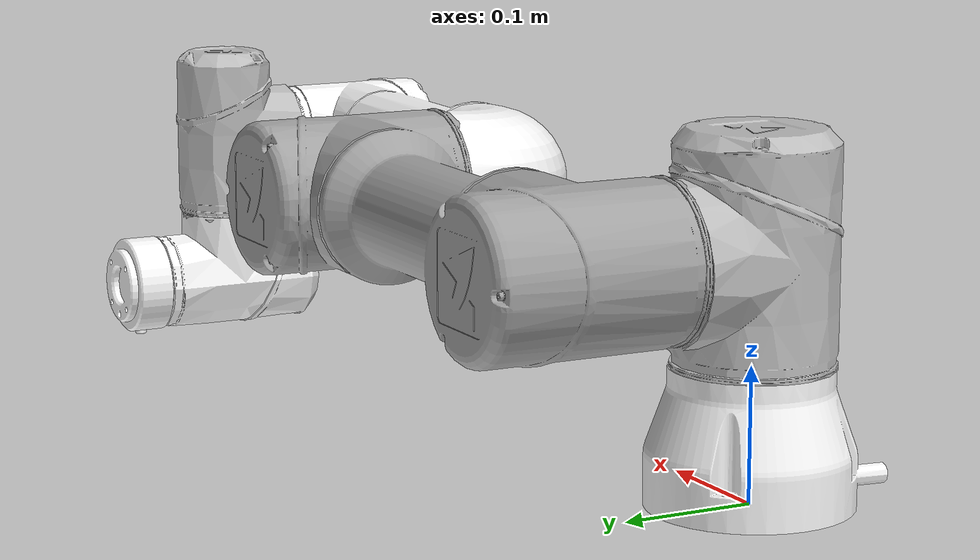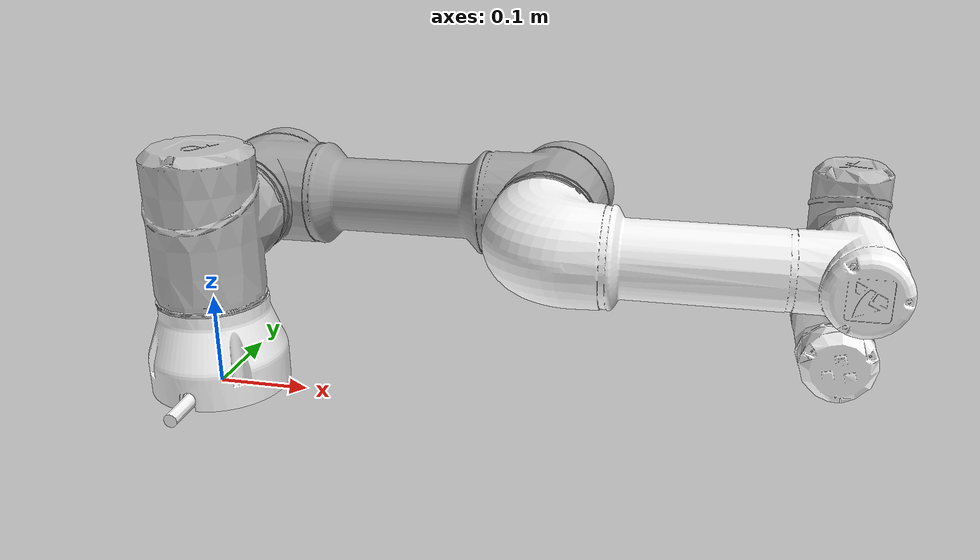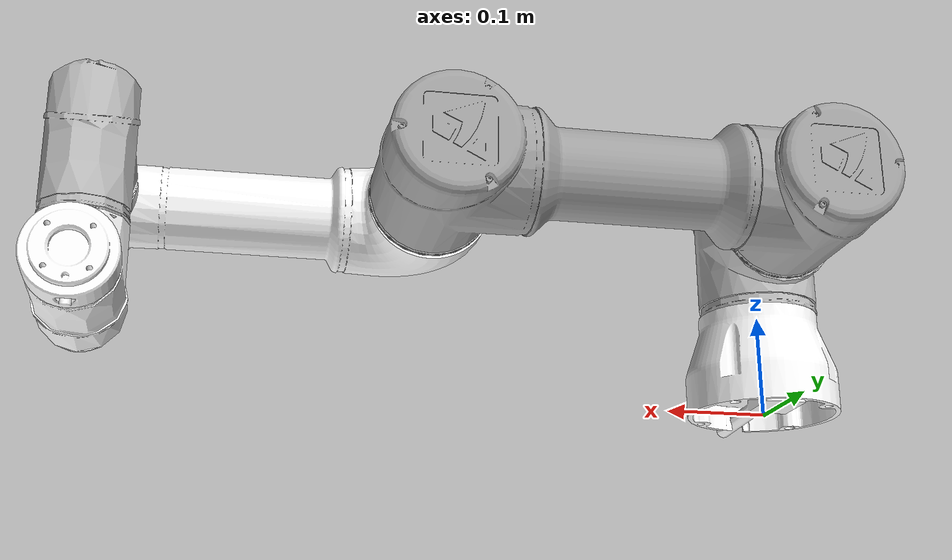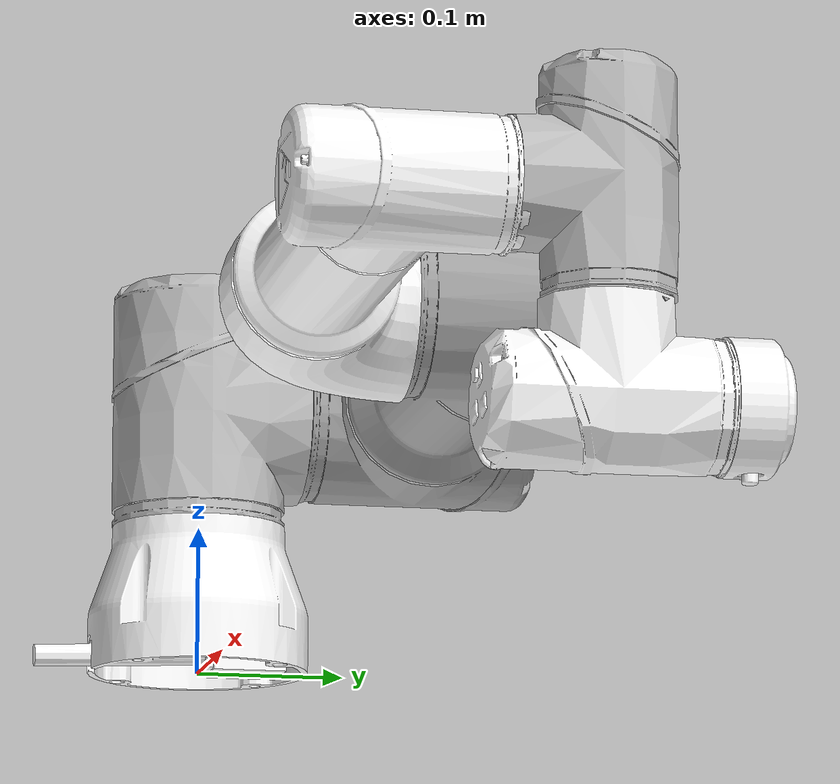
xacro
<?xml version="1.0"?>
<robot xmlns:xacro="http://www.ros.org/wiki/xacro" name="c7a_description">

    <!-- Used for fixing robot to Gazebo 'base_link' -->
    <link name="world"/>
    <joint name="fixed" type="fixed">
        <parent link="world"/>
        <child link="base_link"/>
    </joint>

    <!-- Import c7a_description urdf file -->
    <xacro:include filename="$(find gbt_description)/urdf/GBT_C7A_gazebo.urdf" />

    <!-- Set Gazebo properties for certain links -->
    <gazebo reference="base_link">
        <self_collide>false</self_collide>
        <gravity>false</gravity>
    </gazebo>
    <gazebo reference="link1">
        <self_collide>false</self_collide>
        <gravity>false</gravity>
    </gazebo>
    <gazebo reference="link2">
        <gravity>false</gravity>
    </gazebo>
    <gazebo reference="link3">
        <gravity>false</gravity>
    </gazebo>
    <gazebo reference="link4">
        <gravity>false</gravity>
    </gazebo>
    <gazebo reference="link5">
        <gravity>false</gravity>
    </gazebo>
    <gazebo reference="link6">
        <gravity>false</gravity>
    </gazebo>

    <gazebo>
        <is_static>true</is_static>
        <self_collide>true</self_collide>
    </gazebo>

    <!-- ros2_control -->
    <ros2_control name="GazeboSystem" type="system">
        <hardware>
            <plugin>gazebo_ros2_control/GazeboSystem</plugin>
        </hardware>
        <joint name="joint1">
            <command_interface name="position"/>
            <state_interface name="position">
                <param name="initial_value">0</param>
            </state_interface>
            <state_interface name="velocity"/>
        </joint>
        <joint name="joint2">
            <command_interface name="position"/>
            <state_interface name="position">
                <param name="initial_value">0</param>
            </state_interface>
            <state_interface name="velocity"/>
        </joint>
        <joint name="joint3">
            <command_interface name="position"/>
            <state_interface name="position">
                <param name="initial_value">0</param>
            </state_interface>
            <state_interface name="velocity"/>
        </joint>
        <joint name="joint4">
            <command_interface name="position"/>
            <state_interface name="position">
                <param name="initial_value">0</param>
            </state_interface>
            <state_interface name="velocity"/>
        </joint>
        <joint name="joint5">
            <command_interface name="position"/>
            <state_interface name="position">
                <param name="initial_value">0</param>
            </state_interface>
            <state_interface name="velocity"/>
        </joint>
        <joint name="joint6">
            <command_interface name="position"/>
            <state_interface name="position">
                <param name="initial_value">0</param>
            </state_interface>
            <state_interface name="velocity"/>
        </joint>
    </ros2_control>

    <!-- load ros2_control plugin -->
    <!-- If you don’t need to use MoveIt, comment it out -->
    <gazebo>
        <plugin filename="libgazebo_ros2_control.so" name="gazebo_ros2_control">
            <parameters>$(find c7a_moveit_config)/config/ros2_controllers.yaml</parameters>
            <robot_param>robot_description</robot_param>
            <robot_param_node>robot_state_publisher</robot_param_node>
        </plugin>
    </gazebo>

</robot>

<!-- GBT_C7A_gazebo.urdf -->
<robot
  name="GBT-C7A">
  <link
    name="base_link">
    <inertial>
      <origin
        xyz="-5.26704954492915E-06 -0.0098126576895962 0.0491108287185979"
        rpy="0 0 0" />
      <mass
        value="9.16040326523465" />
      <inertia
        ixx="0.0419458054611511"
        ixy="1.03351238796275E-05"
        ixz="-1.16385212137257E-06"
        iyy="0.0160795355795088"
        iyz="-0.00415210835016869"
        izz="0.0465550656362786" />
    </inertial>
    <visual>
      <origin
        xyz="0 0 0"
        rpy="1.5707963268 0 0" />
      <geometry>
        <mesh
          filename="file://$(find gbt_description)/meshes/visual/c7a/c7a_base.dae" />
      </geometry>
      <material
        name="">
        <color
          rgba="1 1 1 1" />
      </material>
    </visual>
    <collision>
      <origin
        xyz="0 0 0"
        rpy="1.5707963268 0 0" />
      <geometry>
        <mesh
          filename="file://$(find gbt_description)/meshes/collision/c7a/c7a_base.STL" />
      </geometry>
    </collision>
  </link>
  <link
    name="link1">
    <inertial>
      <origin
        xyz="-2.2231E-07 0.0039863 0.082573"
        rpy="0 0 0" />
      <mass
        value="15.175" />
      <inertia
        ixx="0.047239"
        ixy="-1.1092E-08"
        ixz="6.1658E-07"
        iyy="0.045942"
        iyz="-0.00010066"
        izz="0.029088" />
    </inertial>
    <visual>
      <origin
        xyz="0 0 0"
        rpy="0 0 0" />
      <geometry>
        <mesh
          filename="file://$(find gbt_description)/meshes/visual/c7a/c7a_1.dae" />
      </geometry>
      <material
        name="">
        <color
          rgba="0.75294 0.75294 0.75294 1" />
      </material>
    </visual>
    <collision>
      <origin
        xyz="0 0 0"
        rpy="0 0 0" />
      <geometry>
        <mesh
          filename="file://$(find gbt_description)/meshes/collision/c7a/c7a_1.STL" />
      </geometry>
    </collision>
  </link>
  <joint
    name="joint1"
    type="revolute">
    <origin
      xyz="0 0 0.094"
      rpy="0 0 0" />
    <parent
      link="base_link" />
    <child
      link="link1" />
    <axis
      xyz="0 0 1" />
    <limit
      lower="-6.283185307179"
      upper="6.283185307179"
      effort="100"
      velocity="1" />
  </joint>
  <link
    name="link2">
    <inertial>
      <origin
        xyz="0.175 -2.4749E-07 0.082978"
        rpy="0 0 0" />
      <mass
        value="42.406" />
      <inertia
        ixx="0.10612"
        ixy="2.7254E-06"
        ixz="1.9039E-06"
        iyy="1.0509"
        iyz="8.5915E-07"
        izz="1.0146" />
    </inertial>
    <visual>
      <origin
        xyz="0 0 0"
        rpy="0 1.5707963268 -1.5707963268" />
      <geometry>
        <mesh
          filename="file://$(find gbt_description)/meshes/visual/c7a/c7a_2.dae" />
      </geometry>
      <material
        name="">
        <color
          rgba="0.64706 0.64706 0.64706 1" />
      </material>
    </visual>
    <collision>
      <origin
        xyz="0 0 0"
        rpy="0 1.5707963268 -1.5707963268" />
      <geometry>
        <mesh
          filename="file://$(find gbt_description)/meshes/collision/c7a/c7a_2.STL" />
      </geometry>
    </collision>
  </link>
  <joint
    name="joint2"
    type="revolute">
    <origin
      xyz="0 0.063 0.084"
      rpy="-1.5708 0 0" />
    <parent
      link="link1" />
    <child
      link="link2" />
    <axis
      xyz="0 0 -1" />
    <limit
      lower="-1.483529864195"
      upper="4.625122517784"
      effort="100"
      velocity="1" />
  </joint>
  <link
    name="link3">
    <inertial>
      <origin
        xyz="-0.14241 6.1389E-07 0.056555"
        rpy="0 0 0" />
      <mass
        value="22.494" />
      <inertia
        ixx="0.03219"
        ixy="-6.2382E-08"
        ixz="0.014535"
        iyy="0.36351"
        iyz="6.3874E-08"
        izz="0.35645" />
    </inertial>
    <visual>
      <origin
        xyz="0 0 0"
        rpy="3.1415926535 0 -1.5707963268" />
      <geometry>
        <mesh
          filename="file://$(find gbt_description)/meshes/visual/c7a/c7a_3.dae" />
      </geometry>
      <material
        name="">
        <color
          rgba="1 1 1 1" />
      </material>
    </visual>
    <collision>
      <origin
        xyz="0 0 0"
        rpy="3.1415926535 0 -1.5707963268" />
      <geometry>
        <mesh
          filename="file://$(find gbt_description)/meshes/collision/c7a/c7a_3.STL" />
      </geometry>
    </collision>
  </link>
  <joint
    name="joint3"
    type="revolute">
    <origin
      xyz="0.35 0 0"
      rpy="-3.1416 0 3.1416" />
    <parent
      link="link2" />
    <child
      link="link3" />
    <axis
      xyz="0 0 1" />
    <limit
      lower="-2.809980095710"
      upper="2.809980095710"
      effort="100"
      velocity="1" />
  </joint>
  <link
    name="link4">
    <inertial>
      <origin
        xyz="1.2977E-07 0.0036933 0.046819"
        rpy="0 0 0" />
      <mass
        value="5.9624" />
      <inertia
        ixx="0.01117"
        ixy="8.492E-08"
        ixz="1.0592E-08"
        iyy="0.0057359"
        iyz="-0.00011927"
        izz="0.010395" />
    </inertial>
    <visual>
      <origin
        xyz="0 0 0"
        rpy="1.5707963268 0 0" />
      <geometry>
        <mesh
          filename="file://$(find gbt_description)/meshes/visual/c7a/c7a_4.dae" />
      </geometry>
      <material
        name="">
        <color
          rgba="0.75294 0.75294 0.75294 1" />
      </material>
    </visual>
    <collision>
      <origin
        xyz="0 0 0"
        rpy="1.5707963268 0 0" />
      <geometry>
        <mesh
          filename="file://$(find gbt_description)/meshes/collision/c7a/c7a_4.STL"   />
      </geometry>
    </collision>
  </link>
  <joint
    name="joint4"
    type="revolute">
    <origin
      xyz="-0.3117 0 -0.0083"
      rpy="3.1416 0 3.1416" />
    <parent
      link="link3" />
    <child
      link="link4" />
    <axis
      xyz="0 0 -1" />
    <limit
      lower="-1.483529864195"
      upper="4.625122517784"
      effort="100"
      velocity="1" />
  </joint>
  <link
    name="link5">
    <inertial>
      <origin
        xyz="1.3304E-07 -0.00083634 -0.04715"
        rpy="0 0 0" />
      <mass
        value="6.3691" />
      <inertia
        ixx="0.013244"
        ixy="1.0431E-07"
        ixz="3.2379E-08"
        iyy="0.0060649"
        iyz="-1.9476E-05"
        izz="0.012458" />
    </inertial>
    <visual>
      <origin
        xyz="0 0 0"
        rpy="0 0 0" />
      <geometry>
        <mesh
          filename="file://$(find gbt_description)/meshes/visual/c7a/c7a_5.dae" />
      </geometry>
      <material
        name="">
        <color
          rgba="1 1 1 1" />
      </material>
    </visual>
    <collision>
      <origin
        xyz="0 0 0"
        rpy="0 0 0" />
      <geometry>
        <mesh
          filename="file://$(find gbt_description)/meshes/collision/c7a/c7a_5.STL" />
      </geometry>
    </collision>
  </link>
  <joint
    name="joint5"
    type="revolute">
    <origin
      xyz="0 0.0713 0.052"
      rpy="1.5708 0 0" />
    <parent
      link="link4" />
    <child
      link="link5" />
    <axis
      xyz="0 0 -1" />
    <limit
      lower="-6.283185307179"
      upper="6.283185307179"
      effort="100"
      velocity="1" />
  </joint>
  <link
    name="link6">
    <inertial>
      <origin
        xyz="3.8813E-08 0.00017432 0.012497"
        rpy="0 0 0" />
      <mass
        value="1.0139" />
      <inertia
        ixx="0.00046196"
        ixy="1.8319E-11"
        ixz="-3.9805E-12"
        iyy="0.00046763"
        iyz="-6.4994E-08"
        izz="0.00080288" />
    </inertial>
    <visual>
      <origin
        xyz="0 0 0"
        rpy="0 1.5707963268 0" />
      <geometry>
        <mesh
          filename="file://$(find gbt_description)/meshes/visual/c7a/c7a_6.dae" />
      </geometry>
      <material
        name="">
        <color
          rgba="1 1 1 1" />
      </material>
    </visual>
    <collision>
      <origin
        xyz="0 0 0"
        rpy="0 1.5707963268 0" />
      <geometry>
        <mesh
          filename="file://$(find gbt_description)/meshes/collision/c7a/c7a_6.STL" />
      </geometry>
    </collision>
  </link>
  <joint
    name="joint6"
    type="revolute">
    <origin
      xyz="0 0.0713 -0.052"
      rpy="-1.5708 0 0" />
    <parent
      link="link5" />
    <child
      link="link6" />
    <axis
      xyz="0 0 1" />
    <limit
      lower="-6.283185307179"
      upper="6.283185307179"
      effort="100"
      velocity="1" />
  </joint>
</robot>
